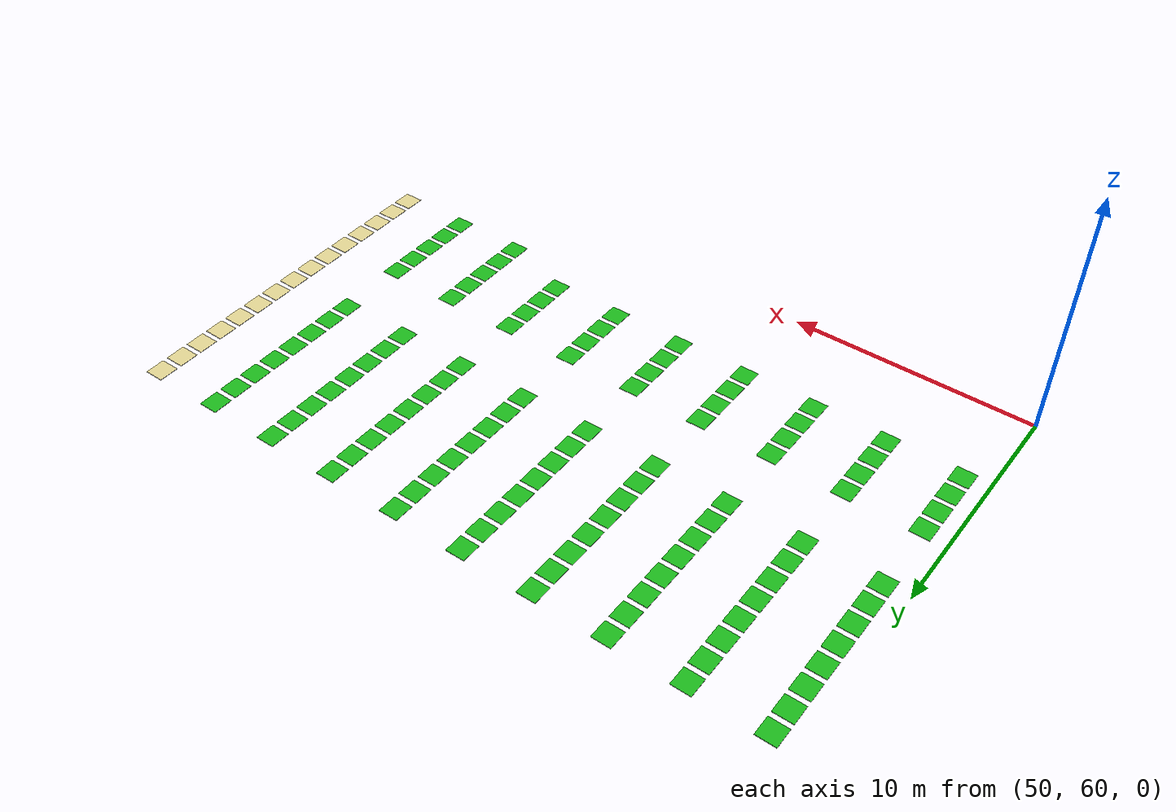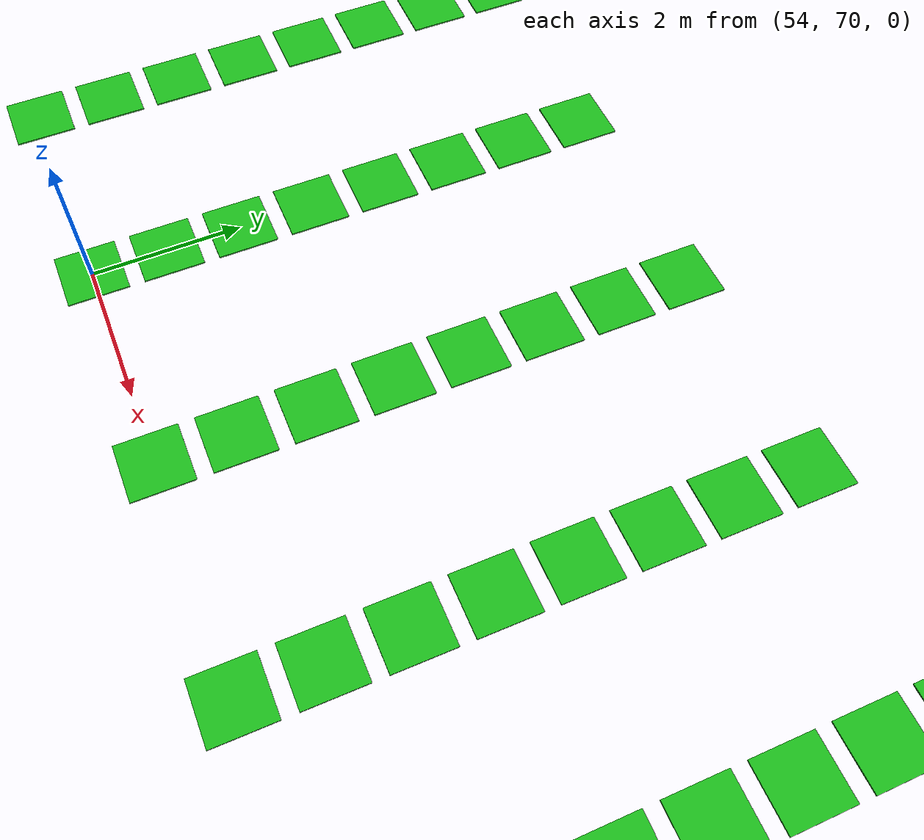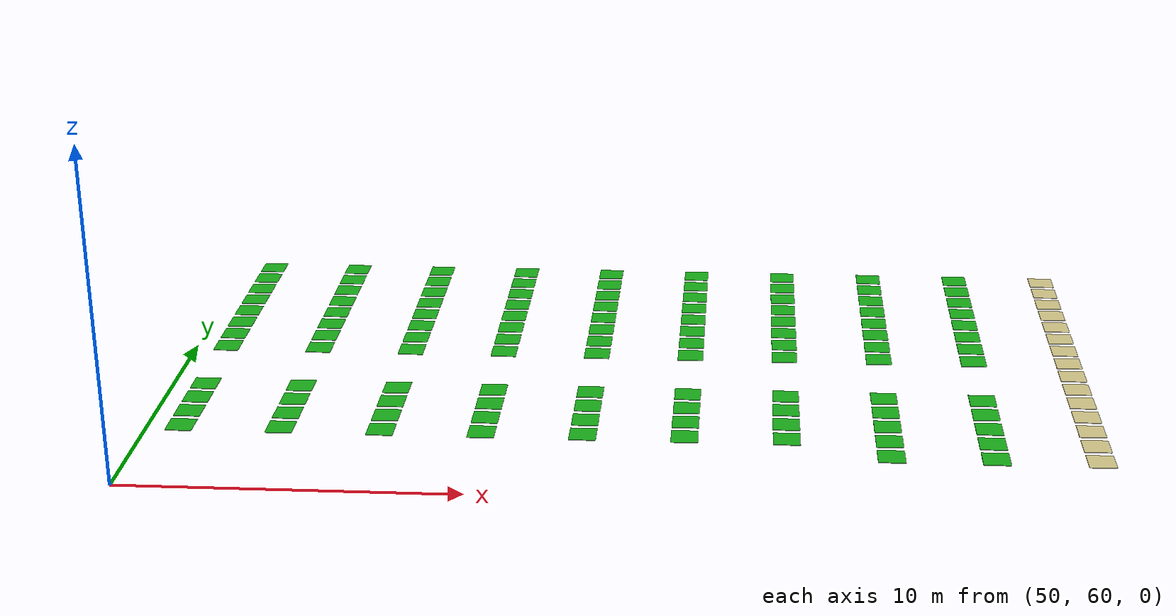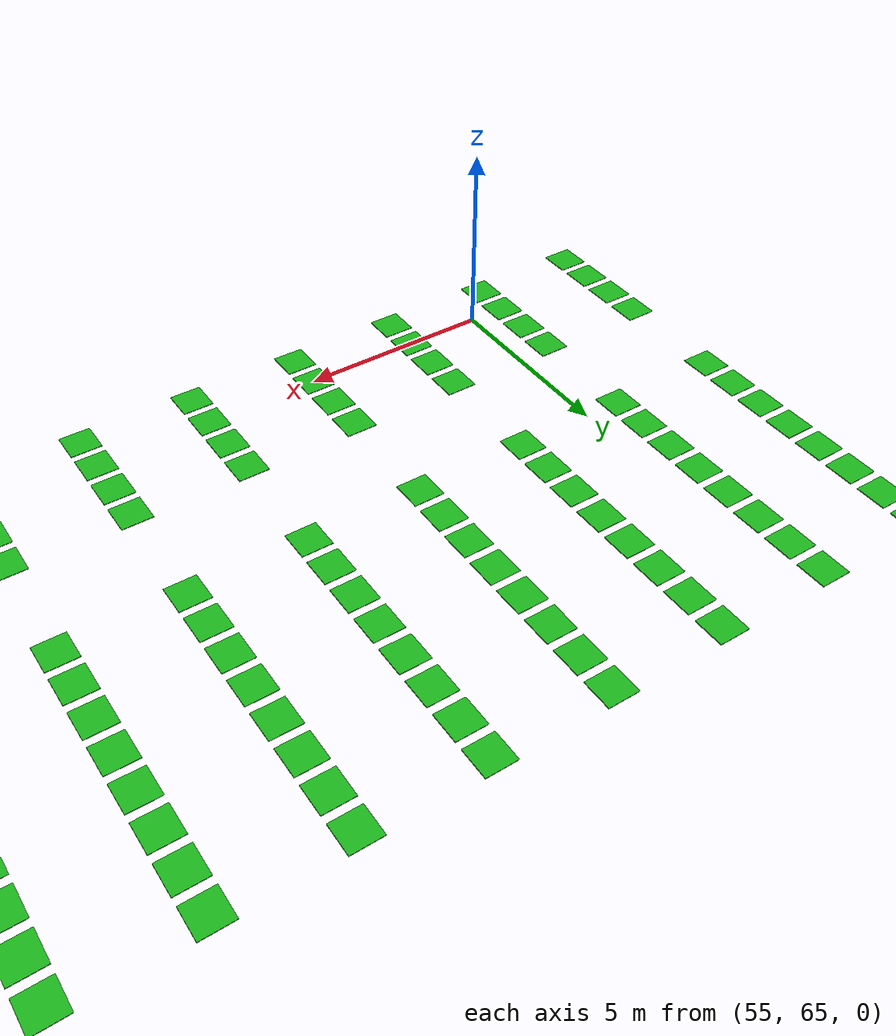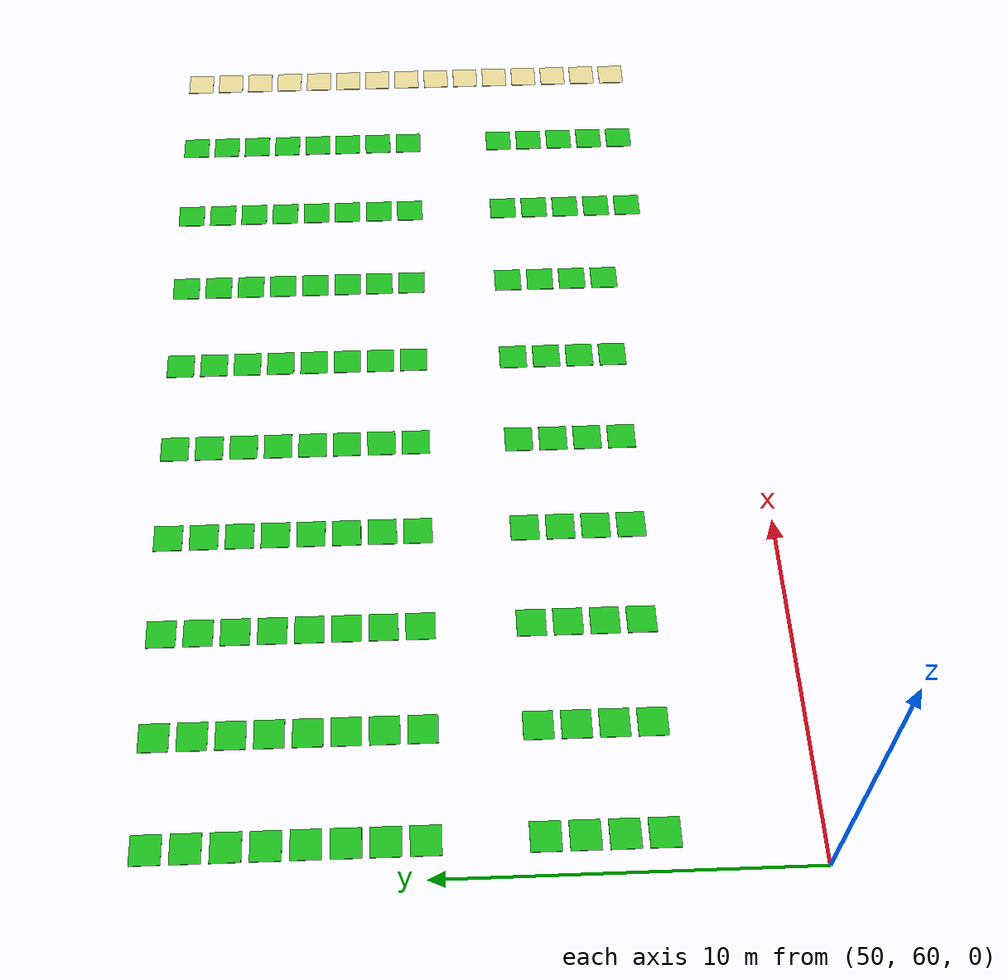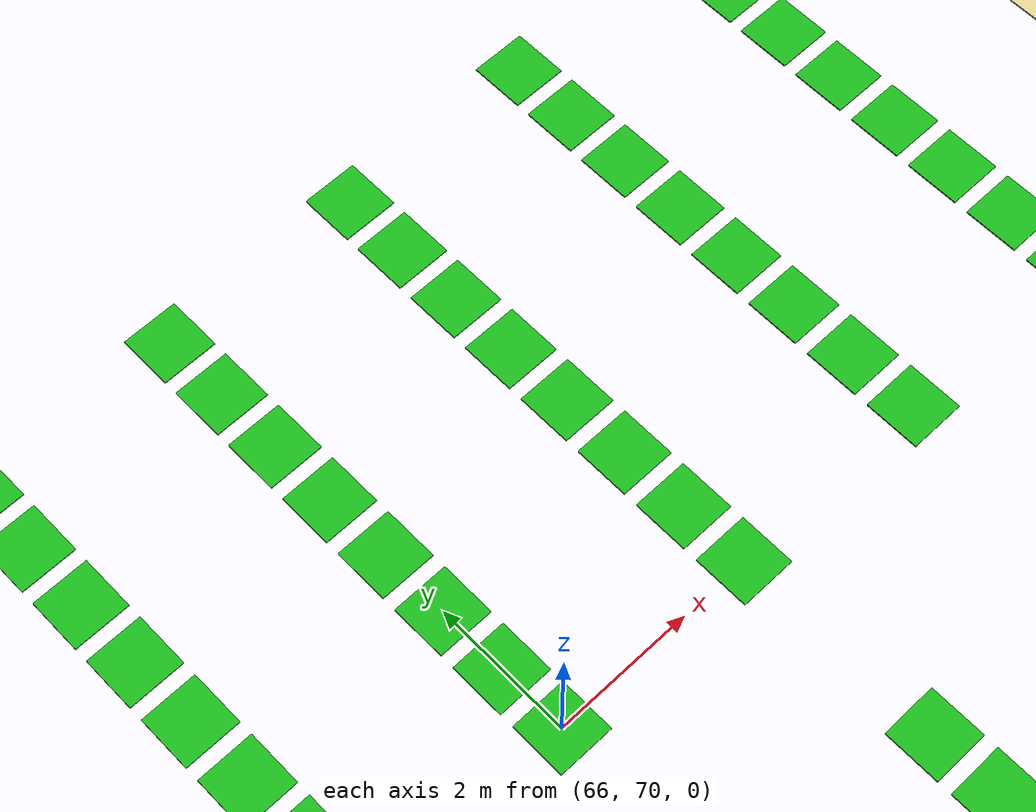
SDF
<sdf version="1.10">
 <world name="my_map">
  <model name="shelf_567">
   <static>true</static>
   <pose>51.0
        77.0
        0.02
        0 0 0</pose>
   <link name="link">
    <visual name="visual">
     <geometry><box><size>0.8
                0.8
                0.02</size></box></geometry>
     <material><ambient>0.10 0.70 0.10 1</ambient><diffuse>0.10 0.70 0.10 1</diffuse></material>
    </visual>
   </link>
  </model>
  <model name="shelf_568">
   <static>true</static>
   <pose>54.0
        77.0
        0.02
        0 0 0</pose>
   <link name="link">
    <visual name="visual">
     <geometry><box><size>0.8
                0.8
                0.02</size></box></geometry>
     <material><ambient>0.10 0.70 0.10 1</ambient><diffuse>0.10 0.70 0.10 1</diffuse></material>
    </visual>
   </link>
  </model>
  <model name="shelf_569">
   <static>true</static>
   <pose>57.0
        77.0
        0.02
        0 0 0</pose>
   <link name="link">
    <visual name="visual">
     <geometry><box><size>0.8
                0.8
                0.02</size></box></geometry>
     <material><ambient>0.10 0.70 0.10 1</ambient><diffuse>0.10 0.70 0.10 1</diffuse></material>
    </visual>
   </link>
  </model>
  <model name="shelf_570">
   <static>true</static>
   <pose>60.0
        77.0
        0.02
        0 0 0</pose>
   <link name="link">
    <visual name="visual">
     <geometry><box><size>0.8
                0.8
                0.02</size></box></geometry>
     <material><ambient>0.10 0.70 0.10 1</ambient><diffuse>0.10 0.70 0.10 1</diffuse></material>
    </visual>
   </link>
  </model>
  <model name="shelf_571">
   <static>true</static>
   <pose>63.0
        77.0
        0.02
        0 0 0</pose>
   <link name="link">
    <visual name="visual">
     <geometry><box><size>0.8
                0.8
                0.02</size></box></geometry>
     <material><ambient>0.10 0.70 0.10 1</ambient><diffuse>0.10 0.70 0.10 1</diffuse></material>
    </visual>
   </link>
  </model>
  <model name="shelf_572">
   <static>true</static>
   <pose>66.0
        77.0
        0.02
        0 0 0</pose>
   <link name="link">
    <visual name="visual">
     <geometry><box><size>0.8
                0.8
                0.02</size></box></geometry>
     <material><ambient>0.10 0.70 0.10 1</ambient><diffuse>0.10 0.70 0.10 1</diffuse></material>
    </visual>
   </link>
  </model>
  <model name="shelf_573">
   <static>true</static>
   <pose>69.0
        77.0
        0.02
        0 0 0</pose>
   <link name="link">
    <visual name="visual">
     <geometry><box><size>0.8
                0.8
                0.02</size></box></geometry>
     <material><ambient>0.10 0.70 0.10 1</ambient><diffuse>0.10 0.70 0.10 1</diffuse></material>
    </visual>
   </link>
  </model>
  <model name="shelf_574">
   <static>true</static>
   <pose>72.0
        77.0
        0.02
        0 0 0</pose>
   <link name="link">
    <visual name="visual">
     <geometry><box><size>0.8
                0.8
                0.02</size></box></geometry>
     <material><ambient>0.10 0.70 0.10 1</ambient><diffuse>0.10 0.70 0.10 1</diffuse></material>
    </visual>
   </link>
  </model>
  <model name="shelf_575">
   <static>true</static>
   <pose>75.0
        77.0
        0.02
        0 0 0</pose>
   <link name="link">
    <visual name="visual">
     <geometry><box><size>0.8
                0.8
                0.02</size></box></geometry>
     <material><ambient>0.10 0.70 0.10 1</ambient><diffuse>0.10 0.70 0.10 1</diffuse></material>
    </visual>
   </link>
  </model>
  <model name="staging_050">
   <static>true</static>
   <pose>78.0
        77.0
        0.02
        0 0 0</pose>
   <link name="link">
    <visual name="visual">
     <geometry><box><size>0.8
                0.8
                0.02</size></box></geometry>
     <material><ambient>0.85 0.80 0.55 1</ambient><diffuse>0.85 0.80 0.55 1</diffuse></material>
    </visual>
   </link>
  </model>
  <model name="shelf_592">
   <static>true</static>
   <pose>51.0
        76.0
        0.02
        0 0 0</pose>
   <link name="link">
    <visual name="visual">
     <geometry><box><size>0.8
                0.8
                0.02</size></box></geometry>
     <material><ambient>0.10 0.70 0.10 1</ambient><diffuse>0.10 0.70 0.10 1</diffuse></material>
    </visual>
   </link>
  </model>
  <model name="shelf_593">
   <static>true</static>
   <pose>54.0
        76.0
        0.02
        0 0 0</pose>
   <link name="link">
    <visual name="visual">
     <geometry><box><size>0.8
                0.8
                0.02</size></box></geometry>
     <material><ambient>0.10 0.70 0.10 1</ambient><diffuse>0.10 0.70 0.10 1</diffuse></material>
    </visual>
   </link>
  </model>
  <model name="shelf_594">
   <static>true</static>
   <pose>57.0
        76.0
        0.02
        0 0 0</pose>
   <link name="link">
    <visual name="visual">
     <geometry><box><size>0.8
                0.8
                0.02</size></box></geometry>
     <material><ambient>0.10 0.70 0.10 1</ambient><diffuse>0.10 0.70 0.10 1</diffuse></material>
    </visual>
   </link>
  </model>
  <model name="shelf_595">
   <static>true</static>
   <pose>60.0
        76.0
        0.02
        0 0 0</pose>
   <link name="link">
    <visual name="visual">
     <geometry><box><size>0.8
                0.8
                0.02</size></box></geometry>
     <material><ambient>0.10 0.70 0.10 1</ambient><diffuse>0.10 0.70 0.10 1</diffuse></material>
    </visual>
   </link>
  </model>
  <model name="shelf_596">
   <static>true</static>
   <pose>63.0
        76.0
        0.02
        0 0 0</pose>
   <link name="link">
    <visual name="visual">
     <geometry><box><size>0.8
                0.8
                0.02</size></box></geometry>
     <material><ambient>0.10 0.70 0.10 1</ambient><diffuse>0.10 0.70 0.10 1</diffuse></material>
    </visual>
   </link>
  </model>
  <model name="shelf_597">
   <static>true</static>
   <pose>66.0
        76.0
        0.02
        0 0 0</pose>
   <link name="link">
    <visual name="visual">
     <geometry><box><size>0.8
                0.8
                0.02</size></box></geometry>
     <material><ambient>0.10 0.70 0.10 1</ambient><diffuse>0.10 0.70 0.10 1</diffuse></material>
    </visual>
   </link>
  </model>
  <model name="shelf_598">
   <static>true</static>
   <pose>69.0
        76.0
        0.02
        0 0 0</pose>
   <link name="link">
    <visual name="visual">
     <geometry><box><size>0.8
                0.8
                0.02</size></box></geometry>
     <material><ambient>0.10 0.70 0.10 1</ambient><diffuse>0.10 0.70 0.10 1</diffuse></material>
    </visual>
   </link>
  </model>
  <model name="shelf_599">
   <static>true</static>
   <pose>72.0
        76.0
        0.02
        0 0 0</pose>
   <link name="link">
    <visual name="visual">
     <geometry><box><size>0.8
                0.8
                0.02</size></box></geometry>
     <material><ambient>0.10 0.70 0.10 1</ambient><diffuse>0.10 0.70 0.10 1</diffuse></material>
    </visual>
   </link>
  </model>
  <model name="shelf_600">
   <static>true</static>
   <pose>75.0
        76.0
        0.02
        0 0 0</pose>
   <link name="link">
    <visual name="visual">
     <geometry><box><size>0.8
                0.8
                0.02</size></box></geometry>
     <material><ambient>0.10 0.70 0.10 1</ambient><diffuse>0.10 0.70 0.10 1</diffuse></material>
    </visual>
   </link>
  </model>
  <model name="staging_052">
   <static>true</static>
   <pose>78.0
        76.0
        0.02
        0 0 0</pose>
   <link name="link">
    <visual name="visual">
     <geometry><box><size>0.8
                0.8
                0.02</size></box></geometry>
     <material><ambient>0.85 0.80 0.55 1</ambient><diffuse>0.85 0.80 0.55 1</diffuse></material>
    </visual>
   </link>
  </model>
  <model name="shelf_617">
   <static>true</static>
   <pose>51.0
        75.0
        0.02
        0 0 0</pose>
   <link name="link">
    <visual name="visual">
     <geometry><box><size>0.8
                0.8
                0.02</size></box></geometry>
     <material><ambient>0.10 0.70 0.10 1</ambient><diffuse>0.10 0.70 0.10 1</diffuse></material>
    </visual>
   </link>
  </model>
  <model name="shelf_618">
   <static>true</static>
   <pose>54.0
        75.0
        0.02
        0 0 0</pose>
   <link name="link">
    <visual name="visual">
     <geometry><box><size>0.8
                0.8
                0.02</size></box></geometry>
     <material><ambient>0.10 0.70 0.10 1</ambient><diffuse>0.10 0.70 0.10 1</diffuse></material>
    </visual>
   </link>
  </model>
  <model name="shelf_619">
   <static>true</static>
   <pose>57.0
        75.0
        0.02
        0 0 0</pose>
   <link name="link">
    <visual name="visual">
     <geometry><box><size>0.8
                0.8
                0.02</size></box></geometry>
     <material><ambient>0.10 0.70 0.10 1</ambient><diffuse>0.10 0.70 0.10 1</diffuse></material>
    </visual>
   </link>
  </model>
  <model name="shelf_620">
   <static>true</static>
   <pose>60.0
        75.0
        0.02
        0 0 0</pose>
   <link name="link">
    <visual name="visual">
     <geometry><box><size>0.8
                0.8
                0.02</size></box></geometry>
     <material><ambient>0.10 0.70 0.10 1</ambient><diffuse>0.10 0.70 0.10 1</diffuse></material>
    </visual>
   </link>
  </model>
  <model name="shelf_621">
   <static>true</static>
   <pose>63.0
        75.0
        0.02
        0 0 0</pose>
   <link name="link">
    <visual name="visual">
     <geometry><box><size>0.8
                0.8
                0.02</size></box></geometry>
     <material><ambient>0.10 0.70 0.10 1</ambient><diffuse>0.10 0.70 0.10 1</diffuse></material>
    </visual>
   </link>
  </model>
  <model name="shelf_622">
   <static>true</static>
   <pose>66.0
        75.0
        0.02
        0 0 0</pose>
   <link name="link">
    <visual name="visual">
     <geometry><box><size>0.8
                0.8
                0.02</size></box></geometry>
     <material><ambient>0.10 0.70 0.10 1</ambient><diffuse>0.10 0.70 0.10 1</diffuse></material>
    </visual>
   </link>
  </model>
  <model name="shelf_623">
   <static>true</static>
   <pose>69.0
        75.0
        0.02
        0 0 0</pose>
   <link name="link">
    <visual name="visual">
     <geometry><box><size>0.8
                0.8
                0.02</size></box></geometry>
     <material><ambient>0.10 0.70 0.10 1</ambient><diffuse>0.10 0.70 0.10 1</diffuse></material>
    </visual>
   </link>
  </model>
  <model name="shelf_624">
   <static>true</static>
   <pose>72.0
        75.0
        0.02
        0 0 0</pose>
   <link name="link">
    <visual name="visual">
     <geometry><box><size>0.8
                0.8
                0.02</size></box></geometry>
     <material><ambient>0.10 0.70 0.10 1</ambient><diffuse>0.10 0.70 0.10 1</diffuse></material>
    </visual>
   </link>
  </model>
  <model name="shelf_625">
   <static>true</static>
   <pose>75.0
        75.0
        0.02
        0 0 0</pose>
   <link name="link">
    <visual name="visual">
     <geometry><box><size>0.8
                0.8
                0.02</size></box></geometry>
     <material><ambient>0.10 0.70 0.10 1</ambient><diffuse>0.10 0.70 0.10 1</diffuse></material>
    </visual>
   </link>
  </model>
  <model name="staging_054">
   <static>true</static>
   <pose>78.0
        75.0
        0.02
        0 0 0</pose>
   <link name="link">
    <visual name="visual">
     <geometry><box><size>0.8
                0.8
                0.02</size></box></geometry>
     <material><ambient>0.85 0.80 0.55 1</ambient><diffuse>0.85 0.80 0.55 1</diffuse></material>
    </visual>
   </link>
  </model>
  <model name="shelf_642">
   <static>true</static>
   <pose>51.0
        74.0
        0.02
        0 0 0</pose>
   <link name="link">
    <visual name="visual">
     <geometry><box><size>0.8
                0.8
                0.02</size></box></geometry>
     <material><ambient>0.10 0.70 0.10 1</ambient><diffuse>0.10 0.70 0.10 1</diffuse></material>
    </visual>
   </link>
  </model>
  <model name="shelf_643">
   <static>true</static>
   <pose>54.0
        74.0
        0.02
        0 0 0</pose>
   <link name="link">
    <visual name="visual">
     <geometry><box><size>0.8
                0.8
                0.02</size></box></geometry>
     <material><ambient>0.10 0.70 0.10 1</ambient><diffuse>0.10 0.70 0.10 1</diffuse></material>
    </visual>
   </link>
  </model>
  <model name="shelf_644">
   <static>true</static>
   <pose>57.0
        74.0
        0.02
        0 0 0</pose>
   <link name="link">
    <visual name="visual">
     <geometry><box><size>0.8
                0.8
                0.02</size></box></geometry>
     <material><ambient>0.10 0.70 0.10 1</ambient><diffuse>0.10 0.70 0.10 1</diffuse></material>
    </visual>
   </link>
  </model>
  <model name="shelf_645">
   <static>true</static>
   <pose>60.0
        74.0
        0.02
        0 0 0</pose>
   <link name="link">
    <visual name="visual">
     <geometry><box><size>0.8
                0.8
                0.02</size></box></geometry>
     <material><ambient>0.10 0.70 0.10 1</ambient><diffuse>0.10 0.70 0.10 1</diffuse></material>
    </visual>
   </link>
  </model>
  <model name="shelf_646">
   <static>true</static>
   <pose>63.0
        74.0
        0.02
        0 0 0</pose>
   <link name="link">
    <visual name="visual">
     <geometry><box><size>0.8
                0.8
                0.02</size></box></geometry>
     <material><ambient>0.10 0.70 0.10 1</ambient><diffuse>0.10 0.70 0.10 1</diffuse></material>
    </visual>
   </link>
  </model>
  <model name="shelf_647">
   <static>true</static>
   <pose>66.0
        74.0
        0.02
        0 0 0</pose>
   <link name="link">
    <visual name="visual">
     <geometry><box><size>0.8
                0.8
                0.02</size></box></geometry>
     <material><ambient>0.10 0.70 0.10 1</ambient><diffuse>0.10 0.70 0.10 1</diffuse></material>
    </visual>
   </link>
  </model>
  <model name="shelf_648">
   <static>true</static>
   <pose>69.0
        74.0
        0.02
        0 0 0</pose>
   <link name="link">
    <visual name="visual">
     <geometry><box><size>0.8
                0.8
                0.02</size></box></geometry>
     <material><ambient>0.10 0.70 0.10 1</ambient><diffuse>0.10 0.70 0.10 1</diffuse></material>
    </visual>
   </link>
  </model>
  <model name="shelf_649">
   <static>true</static>
   <pose>72.0
        74.0
        0.02
        0 0 0</pose>
   <link name="link">
    <visual name="visual">
     <geometry><box><size>0.8
                0.8
                0.02</size></box></geometry>
     <material><ambient>0.10 0.70 0.10 1</ambient><diffuse>0.10 0.70 0.10 1</diffuse></material>
    </visual>
   </link>
  </model>
  <model name="shelf_650">
   <static>true</static>
   <pose>75.0
        74.0
        0.02
        0 0 0</pose>
   <link name="link">
    <visual name="visual">
     <geometry><box><size>0.8
                0.8
                0.02</size></box></geometry>
     <material><ambient>0.10 0.70 0.10 1</ambient><diffuse>0.10 0.70 0.10 1</diffuse></material>
    </visual>
   </link>
  </model>
  <model name="staging_056">
   <static>true</static>
   <pose>78.0
        74.0
        0.02
        0 0 0</pose>
   <link name="link">
    <visual name="visual">
     <geometry><box><size>0.8
                0.8
                0.02</size></box></geometry>
     <material><ambient>0.85 0.80 0.55 1</ambient><diffuse>0.85 0.80 0.55 1</diffuse></material>
    </visual>
   </link>
  </model>
  <model name="shelf_667">
   <static>true</static>
   <pose>51.0
        73.0
        0.02
        0 0 0</pose>
   <link name="link">
    <visual name="visual">
     <geometry><box><size>0.8
                0.8
                0.02</size></box></geometry>
     <material><ambient>0.10 0.70 0.10 1</ambient><diffuse>0.10 0.70 0.10 1</diffuse></material>
    </visual>
   </link>
  </model>
  <model name="shelf_668">
   <static>true</static>
   <pose>54.0
        73.0
        0.02
        0 0 0</pose>
   <link name="link">
    <visual name="visual">
     <geometry><box><size>0.8
                0.8
                0.02</size></box></geometry>
     <material><ambient>0.10 0.70 0.10 1</ambient><diffuse>0.10 0.70 0.10 1</diffuse></material>
    </visual>
   </link>
  </model>
  <model name="shelf_669">
   <static>true</static>
   <pose>57.0
        73.0
        0.02
        0 0 0</pose>
   <link name="link">
    <visual name="visual">
     <geometry><box><size>0.8
                0.8
                0.02</size></box></geometry>
     <material><ambient>0.10 0.70 0.10 1</ambient><diffuse>0.10 0.70 0.10 1</diffuse></material>
    </visual>
   </link>
  </model>
  <model name="shelf_670">
   <static>true</static>
   <pose>60.0
        73.0
        0.02
        0 0 0</pose>
   <link name="link">
    <visual name="visual">
     <geometry><box><size>0.8
                0.8
                0.02</size></box></geometry>
     <material><ambient>0.10 0.70 0.10 1</ambient><diffuse>0.10 0.70 0.10 1</diffuse></material>
    </visual>
   </link>
  </model>
  <model name="shelf_671">
   <static>true</static>
   <pose>63.0
        73.0
        0.02
        0 0 0</pose>
   <link name="link">
    <visual name="visual">
     <geometry><box><size>0.8
                0.8
                0.02</size></box></geometry>
     <material><ambient>0.10 0.70 0.10 1</ambient><diffuse>0.10 0.70 0.10 1</diffuse></material>
    </visual>
   </link>
  </model>
  <model name="shelf_672">
   <static>true</static>
   <pose>66.0
        73.0
        0.02
        0 0 0</pose>
   <link name="link">
    <visual name="visual">
     <geometry><box><size>0.8
                0.8
                0.02</size></box></geometry>
     <material><ambient>0.10 0.70 0.10 1</ambient><diffuse>0.10 0.70 0.10 1</diffuse></material>
    </visual>
   </link>
  </model>
  <model name="shelf_673">
   <static>true</static>
   <pose>69.0
        73.0
        0.02
        0 0 0</pose>
   <link name="link">
    <visual name="visual">
     <geometry><box><size>0.8
                0.8
                0.02</size></box></geometry>
     <material><ambient>0.10 0.70 0.10 1</ambient><diffuse>0.10 0.70 0.10 1</diffuse></material>
    </visual>
   </link>
  </model>
  <model name="shelf_674">
   <static>true</static>
   <pose>72.0
        73.0
        0.02
        0 0 0</pose>
   <link name="link">
    <visual name="visual">
     <geometry><box><size>0.8
                0.8
                0.02</size></box></geometry>
     <material><ambient>0.10 0.70 0.10 1</ambient><diffuse>0.10 0.70 0.10 1</diffuse></material>
    </visual>
   </link>
  </model>
  <model name="shelf_675">
   <static>true</static>
   <pose>75.0
        73.0
        0.02
        0 0 0</pose>
   <link name="link">
    <visual name="visual">
     <geometry><box><size>0.8
                0.8
                0.02</size></box></geometry>
     <material><ambient>0.10 0.70 0.10 1</ambient><diffuse>0.10 0.70 0.10 1</diffuse></material>
    </visual>
   </link>
  </model>
  <model name="staging_058">
   <static>true</static>
   <pose>78.0
        73.0
        0.02
        0 0 0</pose>
   <link name="link">
    <visual name="visual">
     <geometry><box><size>0.8
                0.8
                0.02</size></box></geometry>
     <material><ambient>0.85 0.80 0.55 1</ambient><diffuse>0.85 0.80 0.55 1</diffuse></material>
    </visual>
   </link>
  </model>
  <model name="shelf_692">
   <static>true</static>
   <pose>51.0
        72.0
        0.02
        0 0 0</pose>
   <link name="link">
    <visual name="visual">
     <geometry><box><size>0.8
                0.8
                0.02</size></box></geometry>
     <material><ambient>0.10 0.70 0.10 1</ambient><diffuse>0.10 0.70 0.10 1</diffuse></material>
    </visual>
   </link>
  </model>
  <model name="shelf_693">
   <static>true</static>
   <pose>54.0
        72.0
        0.02
        0 0 0</pose>
   <link name="link">
    <visual name="visual">
     <geometry><box><size>0.8
                0.8
                0.02</size></box></geometry>
     <material><ambient>0.10 0.70 0.10 1</ambient><diffuse>0.10 0.70 0.10 1</diffuse></material>
    </visual>
   </link>
  </model>
  <model name="shelf_694">
   <static>true</static>
   <pose>57.0
        72.0
        0.02
        0 0 0</pose>
   <link name="link">
    <visual name="visual">
     <geometry><box><size>0.8
                0.8
                0.02</size></box></geometry>
     <material><ambient>0.10 0.70 0.10 1</ambient><diffuse>0.10 0.70 0.10 1</diffuse></material>
    </visual>
   </link>
  </model>
  <model name="shelf_695">
   <static>true</static>
   <pose>60.0
        72.0
        0.02
        0 0 0</pose>
   <link name="link">
    <visual name="visual">
     <geometry><box><size>0.8
                0.8
                0.02</size></box></geometry>
     <material><ambient>0.10 0.70 0.10 1</ambient><diffuse>0.10 0.70 0.10 1</diffuse></material>
    </visual>
   </link>
  </model>
  <model name="shelf_696">
   <static>true</static>
   <pose>63.0
        72.0
        0.02
        0 0 0</pose>
   <link name="link">
    <visual name="visual">
     <geometry><box><size>0.8
                0.8
                0.02</size></box></geometry>
     <material><ambient>0.10 0.70 0.10 1</ambient><diffuse>0.10 0.70 0.10 1</diffuse></material>
    </visual>
   </link>
  </model>
  <model name="shelf_697">
   <static>true</static>
   <pose>66.0
        72.0
        0.02
        0 0 0</pose>
   <link name="link">
    <visual name="visual">
     <geometry><box><size>0.8
                0.8
                0.02</size></box></geometry>
     <material><ambient>0.10 0.70 0.10 1</ambient><diffuse>0.10 0.70 0.10 1</diffuse></material>
    </visual>
   </link>
  </model>
  <model name="shelf_698">
   <static>true</static>
   <pose>69.0
        72.0
        0.02
        0 0 0</pose>
   <link name="link">
    <visual name="visual">
     <geometry><box><size>0.8
                0.8
                0.02</size></box></geometry>
     <material><ambient>0.10 0.70 0.10 1</ambient><diffuse>0.10 0.70 0.10 1</diffuse></material>
    </visual>
   </link>
  </model>
  <model name="shelf_699">
   <static>true</static>
   <pose>72.0
        72.0
        0.02
        0 0 0</pose>
   <link name="link">
    <visual name="visual">
     <geometry><box><size>0.8
                0.8
                0.02</size></box></geometry>
     <material><ambient>0.10 0.70 0.10 1</ambient><diffuse>0.10 0.70 0.10 1</diffuse></material>
    </visual>
   </link>
  </model>
  <model name="shelf_700">
   <static>true</static>
   <pose>75.0
        72.0
        0.02
        0 0 0</pose>
   <link name="link">
    <visual name="visual">
     <geometry><box><size>0.8
                0.8
                0.02</size></box></geometry>
     <material><ambient>0.10 0.70 0.10 1</ambient><diffuse>0.10 0.70 0.10 1</diffuse></material>
    </visual>
   </link>
  </model>
  <model name="staging_060">
   <static>true</static>
   <pose>78.0
        72.0
        0.02
        0 0 0</pose>
   <link name="link">
    <visual name="visual">
     <geometry><box><size>0.8
                0.8
                0.02</size></box></geometry>
     <material><ambient>0.85 0.80 0.55 1</ambient><diffuse>0.85 0.80 0.55 1</diffuse></material>
    </visual>
   </link>
  </model>
  <model name="shelf_717">
   <static>true</static>
   <pose>51.0
        71.0
        0.02
        0 0 0</pose>
   <link name="link">
    <visual name="visual">
     <geometry><box><size>0.8
                0.8
                0.02</size></box></geometry>
     <material><ambient>0.10 0.70 0.10 1</ambient><diffuse>0.10 0.70 0.10 1</diffuse></material>
    </visual>
   </link>
  </model>
  <model name="shelf_718">
   <static>true</static>
   <pose>54.0
        71.0
        0.02
        0 0 0</pose>
   <link name="link">
    <visual name="visual">
     <geometry><box><size>0.8
                0.8
                0.02</size></box></geometry>
     <material><ambient>0.10 0.70 0.10 1</ambient><diffuse>0.10 0.70 0.10 1</diffuse></material>
    </visual>
   </link>
  </model>
  <model name="shelf_719">
   <static>true</static>
   <pose>57.0
        71.0
        0.02
        0 0 0</pose>
   <link name="link">
    <visual name="visual">
     <geometry><box><size>0.8
                0.8
                0.02</size></box></geometry>
     <material><ambient>0.10 0.70 0.10 1</ambient><diffuse>0.10 0.70 0.10 1</diffuse></material>
    </visual>
   </link>
  </model>
  <model name="shelf_720">
   <static>true</static>
   <pose>60.0
        71.0
        0.02
        0 0 0</pose>
   <link name="link">
    <visual name="visual">
     <geometry><box><size>0.8
                0.8
                0.02</size></box></geometry>
     <material><ambient>0.10 0.70 0.10 1</ambient><diffuse>0.10 0.70 0.10 1</diffuse></material>
    </visual>
   </link>
  </model>
  <model name="shelf_721">
   <static>true</static>
   <pose>63.0
        71.0
        0.02
        0 0 0</pose>
   <link name="link">
    <visual name="visual">
     <geometry><box><size>0.8
                0.8
                0.02</size></box></geometry>
     <material><ambient>0.10 0.70 0.10 1</ambient><diffuse>0.10 0.70 0.10 1</diffuse></material>
    </visual>
   </link>
  </model>
  <model name="shelf_722">
   <static>true</static>
   <pose>66.0
        71.0
        0.02
        0 0 0</pose>
   <link name="link">
    <visual name="visual">
     <geometry><box><size>0.8
                0.8
                0.02</size></box></geometry>
     <material><ambient>0.10 0.70 0.10 1</ambient><diffuse>0.10 0.70 0.10 1</diffuse></material>
    </visual>
   </link>
  </model>
  <model name="shelf_723">
   <static>true</static>
   <pose>69.0
        71.0
        0.02
        0 0 0</pose>
   <link name="link">
    <visual name="visual">
     <geometry><box><size>0.8
                0.8
                0.02</size></box></geometry>
     <material><ambient>0.10 0.70 0.10 1</ambient><diffuse>0.10 0.70 0.10 1</diffuse></material>
    </visual>
   </link>
  </model>
  <model name="shelf_724">
   <static>true</static>
   <pose>72.0
        71.0
        0.02
        0 0 0</pose>
   <link name="link">
    <visual name="visual">
     <geometry><box><size>0.8
                0.8
                0.02</size></box></geometry>
     <material><ambient>0.10 0.70 0.10 1</ambient><diffuse>0.10 0.70 0.10 1</diffuse></material>
    </visual>
   </link>
  </model>
  <model name="shelf_725">
   <static>true</static>
   <pose>75.0
        71.0
        0.02
        0 0 0</pose>
   <link name="link">
    <visual name="visual">
     <geometry><box><size>0.8
                0.8
                0.02</size></box></geometry>
     <material><ambient>0.10 0.70 0.10 1</ambient><diffuse>0.10 0.70 0.10 1</diffuse></material>
    </visual>
   </link>
  </model>
  <model name="staging_062">
   <static>true</static>
   <pose>78.0
        71.0
        0.02
        0 0 0</pose>
   <link name="link">
    <visual name="visual">
     <geometry><box><size>0.8
                0.8
                0.02</size></box></geometry>
     <material><ambient>0.85 0.80 0.55 1</ambient><diffuse>0.85 0.80 0.55 1</diffuse></material>
    </visual>
   </link>
  </model>
  <model name="shelf_742">
   <static>true</static>
   <pose>51.0
        70.0
        0.02
        0 0 0</pose>
   <link name="link">
    <visual name="visual">
     <geometry><box><size>0.8
                0.8
                0.02</size></box></geometry>
     <material><ambient>0.10 0.70 0.10 1</ambient><diffuse>0.10 0.70 0.10 1</diffuse></material>
    </visual>
   </link>
  </model>
  <model name="shelf_743">
   <static>true</static>
   <pose>54.0
        70.0
        0.02
        0 0 0</pose>
   <link name="link">
    <visual name="visual">
     <geometry><box><size>0.8
                0.8
                0.02</size></box></geometry>
     <material><ambient>0.10 0.70 0.10 1</ambient><diffuse>0.10 0.70 0.10 1</diffuse></material>
    </visual>
   </link>
  </model>
  <model name="shelf_744">
   <static>true</static>
   <pose>57.0
        70.0
        0.02
        0 0 0</pose>
   <link name="link">
    <visual name="visual">
     <geometry><box><size>0.8
                0.8
                0.02</size></box></geometry>
     <material><ambient>0.10 0.70 0.10 1</ambient><diffuse>0.10 0.70 0.10 1</diffuse></material>
    </visual>
   </link>
  </model>
  <model name="shelf_745">
   <static>true</static>
   <pose>60.0
        70.0
        0.02
        0 0 0</pose>
   <link name="link">
    <visual name="visual">
     <geometry><box><size>0.8
                0.8
                0.02</size></box></geometry>
     <material><ambient>0.10 0.70 0.10 1</ambient><diffuse>0.10 0.70 0.10 1</diffuse></material>
    </visual>
   </link>
  </model>
  <model name="shelf_746">
   <static>true</static>
   <pose>63.0
        70.0
        0.02
        0 0 0</pose>
   <link name="link">
    <visual name="visual">
     <geometry><box><size>0.8
                0.8
                0.02</size></box></geometry>
     <material><ambient>0.10 0.70 0.10 1</ambient><diffuse>0.10 0.70 0.10 1</diffuse></material>
    </visual>
   </link>
  </model>
  <model name="shelf_747">
   <static>true</static>
   <pose>66.0
        70.0
        0.02
        0 0 0</pose>
   <link name="link">
    <visual name="visual">
     <geometry><box><size>0.8
                0.8
                0.02</size></box></geometry>
     <material><ambient>0.10 0.70 0.10 1</ambient><diffuse>0.10 0.70 0.10 1</diffuse></material>
    </visual>
   </link>
  </model>
  <model name="shelf_748">
   <static>true</static>
   <pose>69.0
        70.0
        0.02
        0 0 0</pose>
   <link name="link">
    <visual name="visual">
     <geometry><box><size>0.8
                0.8
                0.02</size></box></geometry>
     <material><ambient>0.10 0.70 0.10 1</ambient><diffuse>0.10 0.70 0.10 1</diffuse></material>
    </visual>
   </link>
  </model>
  <model name="shelf_749">
   <static>true</static>
   <pose>72.0
        70.0
        0.02
        0 0 0</pose>
   <link name="link">
    <visual name="visual">
     <geometry><box><size>0.8
                0.8
                0.02</size></box></geometry>
     <material><ambient>0.10 0.70 0.10 1</ambient><diffuse>0.10 0.70 0.10 1</diffuse></material>
    </visual>
   </link>
  </model>
  <model name="shelf_750">
   <static>true</static>
   <pose>75.0
        70.0
        0.02
        0 0 0</pose>
   <link name="link">
    <visual name="visual">
     <geometry><box><size>0.8
                0.8
                0.02</size></box></geometry>
     <material><ambient>0.10 0.70 0.10 1</ambient><diffuse>0.10 0.70 0.10 1</diffuse></material>
    </visual>
   </link>
  </model>
  <model name="staging_064">
   <static>true</static>
   <pose>78.0
        70.0
        0.02
        0 0 0</pose>
   <link name="link">
    <visual name="visual">
     <geometry><box><size>0.8
                0.8
                0.02</size></box></geometry>
     <material><ambient>0.85 0.80 0.55 1</ambient><diffuse>0.85 0.80 0.55 1</diffuse></material>
    </visual>
   </link>
  </model>
  <model name="staging_066">
   <static>true</static>
   <pose>78.0
        69.0
        0.02
        0 0 0</pose>
   <link name="link">
    <visual name="visual">
     <geometry><box><size>0.8
                0.8
                0.02</size></box></geometry>
     <material><ambient>0.85 0.80 0.55 1</ambient><diffuse>0.85 0.80 0.55 1</diffuse></material>
    </visual>
   </link>
  </model>
  <model name="staging_068">
   <static>true</static>
   <pose>78.0
        68.0
        0.02
        0 0 0</pose>
   <link name="link">
    <visual name="visual">
     <geometry><box><size>0.8
                0.8
                0.02</size></box></geometry>
     <material><ambient>0.85 0.80 0.55 1</ambient><diffuse>0.85 0.80 0.55 1</diffuse></material>
    </visual>
   </link>
  </model>
  <model name="shelf_767">
   <static>true</static>
   <pose>51.0
        67.0
        0.02
        0 0 0</pose>
   <link name="link">
    <visual name="visual">
     <geometry><box><size>0.8
                0.8
                0.02</size></box></geometry>
     <material><ambient>0.10 0.70 0.10 1</ambient><diffuse>0.10 0.70 0.10 1</diffuse></material>
    </visual>
   </link>
  </model>
  <model name="shelf_768">
   <static>true</static>
   <pose>54.0
        67.0
        0.02
        0 0 0</pose>
   <link name="link">
    <visual name="visual">
     <geometry><box><size>0.8
                0.8
                0.02</size></box></geometry>
     <material><ambient>0.10 0.70 0.10 1</ambient><diffuse>0.10 0.70 0.10 1</diffuse></material>
    </visual>
   </link>
  </model>
  <model name="shelf_769">
   <static>true</static>
   <pose>57.0
        67.0
        0.02
        0 0 0</pose>
   <link name="link">
    <visual name="visual">
     <geometry><box><size>0.8
                0.8
                0.02</size></box></geometry>
     <material><ambient>0.10 0.70 0.10 1</ambient><diffuse>0.10 0.70 0.10 1</diffuse></material>
    </visual>
   </link>
  </model>
  <model name="shelf_770">
   <static>true</static>
   <pose>60.0
        67.0
        0.02
        0 0 0</pose>
   <link name="link">
    <visual name="visual">
     <geometry><box><size>0.8
                0.8
                0.02</size></box></geometry>
     <material><ambient>0.10 0.70 0.10 1</ambient><diffuse>0.10 0.70 0.10 1</diffuse></material>
    </visual>
   </link>
  </model>
  <model name="shelf_771">
   <static>true</static>
   <pose>63.0
        67.0
        0.02
        0 0 0</pose>
   <link name="link">
    <visual name="visual">
     <geometry><box><size>0.8
                0.8
                0.02</size></box></geometry>
     <material><ambient>0.10 0.70 0.10 1</ambient><diffuse>0.10 0.70 0.10 1</diffuse></material>
    </visual>
   </link>
  </model>
  <model name="shelf_772">
   <static>true</static>
   <pose>66.0
        67.0
        0.02
        0 0 0</pose>
   <link name="link">
    <visual name="visual">
     <geometry><box><size>0.8
                0.8
                0.02</size></box></geometry>
     <material><ambient>0.10 0.70 0.10 1</ambient><diffuse>0.10 0.70 0.10 1</diffuse></material>
    </visual>
   </link>
  </model>
  <model name="shelf_773">
   <static>true</static>
   <pose>69.0
        67.0
        0.02
        0 0 0</pose>
   <link name="link">
    <visual name="visual">
     <geometry><box><size>0.8
                0.8
                0.02</size></box></geometry>
     <material><ambient>0.10 0.70 0.10 1</ambient><diffuse>0.10 0.70 0.10 1</diffuse></material>
    </visual>
   </link>
  </model>
  <model name="shelf_774">
   <static>true</static>
   <pose>72.0
        67.0
        0.02
        0 0 0</pose>
   <link name="link">
    <visual name="visual">
     <geometry><box><size>0.8
                0.8
                0.02</size></box></geometry>
     <material><ambient>0.10 0.70 0.10 1</ambient><diffuse>0.10 0.70 0.10 1</diffuse></material>
    </visual>
   </link>
  </model>
  <model name="shelf_775">
   <static>true</static>
   <pose>75.0
        67.0
        0.02
        0 0 0</pose>
   <link name="link">
    <visual name="visual">
     <geometry><box><size>0.8
                0.8
                0.02</size></box></geometry>
     <material><ambient>0.10 0.70 0.10 1</ambient><diffuse>0.10 0.70 0.10 1</diffuse></material>
    </visual>
   </link>
  </model>
  <model name="staging_070">
   <static>true</static>
   <pose>78.0
        67.0
        0.02
        0 0 0</pose>
   <link name="link">
    <visual name="visual">
     <geometry><box><size>0.8
                0.8
                0.02</size></box></geometry>
     <material><ambient>0.85 0.80 0.55 1</ambient><diffuse>0.85 0.80 0.55 1</diffuse></material>
    </visual>
   </link>
  </model>
  <model name="shelf_792">
   <static>true</static>
   <pose>51.0
        66.0
        0.02
        0 0 0</pose>
   <link name="link">
    <visual name="visual">
     <geometry><box><size>0.8
                0.8
                0.02</size></box></geometry>
     <material><ambient>0.10 0.70 0.10 1</ambient><diffuse>0.10 0.70 0.10 1</diffuse></material>
    </visual>
   </link>
  </model>
  <model name="shelf_793">
   <static>true</static>
   <pose>54.0
        66.0
        0.02
        0 0 0</pose>
   <link name="link">
    <visual name="visual">
     <geometry><box><size>0.8
                0.8
                0.02</size></box></geometry>
     <material><ambient>0.10 0.70 0.10 1</ambient><diffuse>0.10 0.70 0.10 1</diffuse></material>
    </visual>
   </link>
  </model>
  <model name="shelf_794">
   <static>true</static>
   <pose>57.0
        66.0
        0.02
        0 0 0</pose>
   <link name="link">
    <visual name="visual">
     <geometry><box><size>0.8
                0.8
                0.02</size></box></geometry>
     <material><ambient>0.10 0.70 0.10 1</ambient><diffuse>0.10 0.70 0.10 1</diffuse></material>
    </visual>
   </link>
  </model>
  <model name="shelf_795">
   <static>true</static>
   <pose>60.0
        66.0
        0.02
        0 0 0</pose>
   <link name="link">
    <visual name="visual">
     <geometry><box><size>0.8
                0.8
                0.02</size></box></geometry>
     <material><ambient>0.10 0.70 0.10 1</ambient><diffuse>0.10 0.70 0.10 1</diffuse></material>
    </visual>
   </link>
  </model>
  <model name="shelf_796">
   <static>true</static>
   <pose>63.0
        66.0
        0.02
        0 0 0</pose>
   <link name="link">
    <visual name="visual">
     <geometry><box><size>0.8
                0.8
                0.02</size></box></geometry>
     <material><ambient>0.10 0.70 0.10 1</ambient><diffuse>0.10 0.70 0.10 1</diffuse></material>
    </visual>
   </link>
  </model>
  <model name="shelf_797">
   <static>true</static>
   <pose>66.0
        66.0
        0.02
        0 0 0</pose>
   <link name="link">
    <visual name="visual">
     <geometry><box><size>0.8
                0.8
                0.02</size></box></geometry>
     <material><ambient>0.10 0.70 0.10 1</ambient><diffuse>0.10 0.70 0.10 1</diffuse></material>
    </visual>
   </link>
  </model>
  <model name="shelf_798">
   <static>true</static>
   <pose>69.0
        66.0
        0.02
        0 0 0</pose>
   <link name="link">
    <visual name="visual">
     <geometry><box><size>0.8
                0.8
                0.02</size></box></geometry>
     <material><ambient>0.10 0.70 0.10 1</ambient><diffuse>0.10 0.70 0.10 1</diffuse></material>
    </visual>
   </link>
  </model>
  <model name="shelf_799">
   <static>true</static>
   <pose>72.0
        66.0
        0.02
        0 0 0</pose>
   <link name="link">
    <visual name="visual">
     <geometry><box><size>0.8
                0.8
                0.02</size></box></geometry>
     <material><ambient>0.10 0.70 0.10 1</ambient><diffuse>0.10 0.70 0.10 1</diffuse></material>
    </visual>
   </link>
  </model>
  <model name="shelf_800">
   <static>true</static>
   <pose>75.0
        66.0
        0.02
        0 0 0</pose>
   <link name="link">
    <visual name="visual">
     <geometry><box><size>0.8
                0.8
                0.02</size></box></geometry>
     <material><ambient>0.10 0.70 0.10 1</ambient><diffuse>0.10 0.70 0.10 1</diffuse></material>
    </visual>
   </link>
  </model>
  <model name="staging_072">
   <static>true</static>
   <pose>78.0
        66.0
        0.02
        0 0 0</pose>
   <link name="link">
    <visual name="visual">
     <geometry><box><size>0.8
                0.8
                0.02</size></box></geometry>
     <material><ambient>0.85 0.80 0.55 1</ambient><diffuse>0.85 0.80 0.55 1</diffuse></material>
    </visual>
   </link>
  </model>
  <model name="shelf_817">
   <static>true</static>
   <pose>51.0
        65.0
        0.02
        0 0 0</pose>
   <link name="link">
    <visual name="visual">
     <geometry><box><size>0.8
                0.8
                0.02</size></box></geometry>
     <material><ambient>0.10 0.70 0.10 1</ambient><diffuse>0.10 0.70 0.10 1</diffuse></material>
    </visual>
   </link>
  </model>
  <model name="shelf_818">
   <static>true</static>
   <pose>54.0
        65.0
        0.02
        0 0 0</pose>
   <link name="link">
    <visual name="visual">
     <geometry><box><size>0.8
                0.8
                0.02</size></box></geometry>
     <material><ambient>0.10 0.70 0.10 1</ambient><diffuse>0.10 0.70 0.10 1</diffuse></material>
    </visual>
   </link>
  </model>
  <model name="shelf_819">
   <static>true</static>
   <pose>57.0
        65.0
        0.02
        0 0 0</pose>
   <link name="link">
    <visual name="visual">
     <geometry><box><size>0.8
                0.8
                0.02</size></box></geometry>
     <material><ambient>0.10 0.70 0.10 1</ambient><diffuse>0.10 0.70 0.10 1</diffuse></material>
    </visual>
   </link>
  </model>
  <model name="shelf_820">
   <static>true</static>
   <pose>60.0
        65.0
        0.02
        0 0 0</pose>
   <link name="link">
    <visual name="visual">
     <geometry><box><size>0.8
                0.8
                0.02</size></box></geometry>
     <material><ambient>0.10 0.70 0.10 1</ambient><diffuse>0.10 0.70 0.10 1</diffuse></material>
    </visual>
   </link>
  </model>
  <model name="shelf_821">
   <static>true</static>
   <pose>63.0
        65.0
        0.02
        0 0 0</pose>
   <link name="link">
    <visual name="visual">
     <geometry><box><size>0.8
                0.8
                0.02</size></box></geometry>
     <material><ambient>0.10 0.70 0.10 1</ambient><diffuse>0.10 0.70 0.10 1</diffuse></material>
    </visual>
   </link>
  </model>
  <model name="shelf_822">
   <static>true</static>
   <pose>66.0
        65.0
        0.02
        0 0 0</pose>
   <link name="link">
    <visual name="visual">
     <geometry><box><size>0.8
                0.8
                0.02</size></box></geometry>
     <material><ambient>0.10 0.70 0.10 1</ambient><diffuse>0.10 0.70 0.10 1</diffuse></material>
    </visual>
   </link>
  </model>
  <model name="shelf_823">
   <static>true</static>
   <pose>69.0
        65.0
        0.02
        0 0 0</pose>
   <link name="link">
    <visual name="visual">
     <geometry><box><size>0.8
                0.8
                0.02</size></box></geometry>
     <material><ambient>0.10 0.70 0.10 1</ambient><diffuse>0.10 0.70 0.10 1</diffuse></material>
    </visual>
   </link>
  </model>
  <model name="shelf_824">
   <static>true</static>
   <pose>72.0
        65.0
        0.02
        0 0 0</pose>
   <link name="link">
    <visual name="visual">
     <geometry><box><size>0.8
                0.8
                0.02</size></box></geometry>
     <material><ambient>0.10 0.70 0.10 1</ambient><diffuse>0.10 0.70 0.10 1</diffuse></material>
    </visual>
   </link>
  </model>
  <model name="shelf_825">
   <static>true</static>
   <pose>75.0
        65.0
        0.02
        0 0 0</pose>
   <link name="link">
    <visual name="visual">
     <geometry><box><size>0.8
                0.8
                0.02</size></box></geometry>
     <material><ambient>0.10 0.70 0.10 1</ambient><diffuse>0.10 0.70 0.10 1</diffuse></material>
    </visual>
   </link>
  </model>
  <model name="staging_074">
   <static>true</static>
   <pose>78.0
        65.0
        0.02
        0 0 0</pose>
   <link name="link">
    <visual name="visual">
     <geometry><box><size>0.8
                0.8
                0.02</size></box></geometry>
     <material><ambient>0.85 0.80 0.55 1</ambient><diffuse>0.85 0.80 0.55 1</diffuse></material>
    </visual>
   </link>
  </model>
  <model name="shelf_842">
   <static>true</static>
   <pose>51.0
        64.0
        0.02
        0 0 0</pose>
   <link name="link">
    <visual name="visual">
     <geometry><box><size>0.8
                0.8
                0.02</size></box></geometry>
     <material><ambient>0.10 0.70 0.10 1</ambient><diffuse>0.10 0.70 0.10 1</diffuse></material>
    </visual>
   </link>
  </model>
  <model name="shelf_843">
   <static>true</static>
   <pose>54.0
        64.0
        0.02
        0 0 0</pose>
   <link name="link">
    <visual name="visual">
     <geometry><box><size>0.8
                0.8
                0.02</size></box></geometry>
     <material><ambient>0.10 0.70 0.10 1</ambient><diffuse>0.10 0.70 0.10 1</diffuse></material>
    </visual>
   </link>
  </model>
  <model name="shelf_844">
   <static>true</static>
   <pose>57.0
        64.0
        0.02
        0 0 0</pose>
   <link name="link">
    <visual name="visual">
     <geometry><box><size>0.8
                0.8
                0.02</size></box></geometry>
     <material><ambient>0.10 0.70 0.10 1</ambient><diffuse>0.10 0.70 0.10 1</diffuse></material>
    </visual>
   </link>
  </model>
  <model name="shelf_845">
   <static>true</static>
   <pose>60.0
        64.0
        0.02
        0 0 0</pose>
   <link name="link">
    <visual name="visual">
     <geometry><box><size>0.8
                0.8
                0.02</size></box></geometry>
     <material><ambient>0.10 0.70 0.10 1</ambient><diffuse>0.10 0.70 0.10 1</diffuse></material>
    </visual>
   </link>
  </model>
  <model name="shelf_846">
   <static>true</static>
   <pose>63.0
        64.0
        0.02
        0 0 0</pose>
   <link name="link">
    <visual name="visual">
     <geometry><box><size>0.8
                0.8
                0.02</size></box></geometry>
     <material><ambient>0.10 0.70 0.10 1</ambient><diffuse>0.10 0.70 0.10 1</diffuse></material>
    </visual>
   </link>
  </model>
  <model name="shelf_847">
   <static>true</static>
   <pose>66.0
        64.0
        0.02
        0 0 0</pose>
   <link name="link">
    <visual name="visual">
     <geometry><box><size>0.8
                0.8
                0.02</size></box></geometry>
     <material><ambient>0.10 0.70 0.10 1</ambient><diffuse>0.10 0.70 0.10 1</diffuse></material>
    </visual>
   </link>
  </model>
  <model name="shelf_848">
   <static>true</static>
   <pose>69.0
        64.0
        0.02
        0 0 0</pose>
   <link name="link">
    <visual name="visual">
     <geometry><box><size>0.8
                0.8
                0.02</size></box></geometry>
     <material><ambient>0.10 0.70 0.10 1</ambient><diffuse>0.10 0.70 0.10 1</diffuse></material>
    </visual>
   </link>
  </model>
  <model name="shelf_849">
   <static>true</static>
   <pose>72.0
        64.0
        0.02
        0 0 0</pose>
   <link name="link">
    <visual name="visual">
     <geometry><box><size>0.8
                0.8
                0.02</size></box></geometry>
     <material><ambient>0.10 0.70 0.10 1</ambient><diffuse>0.10 0.70 0.10 1</diffuse></material>
    </visual>
   </link>
  </model>
  <model name="shelf_850">
   <static>true</static>
   <pose>75.0
        64.0
        0.02
        0 0 0</pose>
   <link name="link">
    <visual name="visual">
     <geometry><box><size>0.8
                0.8
                0.02</size></box></geometry>
     <material><ambient>0.10 0.70 0.10 1</ambient><diffuse>0.10 0.70 0.10 1</diffuse></material>
    </visual>
   </link>
  </model>
  <model name="staging_076">
   <static>true</static>
   <pose>78.0
        64.0
        0.02
        0 0 0</pose>
   <link name="link">
    <visual name="visual">
     <geometry><box><size>0.8
                0.8
                0.02</size></box></geometry>
     <material><ambient>0.85 0.80 0.55 1</ambient><diffuse>0.85 0.80 0.55 1</diffuse></material>
    </visual>
   </link>
  </model>
  <model name="shelf_874">
   <static>true</static>
   <pose>72.0
        63.0
        0.02
        0 0 0</pose>
   <link name="link">
    <visual name="visual">
     <geometry><box><size>0.8
                0.8
                0.02</size></box></geometry>
     <material><ambient>0.10 0.70 0.10 1</ambient><diffuse>0.10 0.70 0.10 1</diffuse></material>
    </visual>
   </link>
  </model>
  <model name="shelf_875">
   <static>true</static>
   <pose>75.0
        63.0
        0.02
        0 0 0</pose>
   <link name="link">
    <visual name="visual">
     <geometry><box><size>0.8
                0.8
                0.02</size></box></geometry>
     <material><ambient>0.10 0.70 0.10 1</ambient><diffuse>0.10 0.70 0.10 1</diffuse></material>
    </visual>
   </link>
  </model>
  <model name="staging_078">
   <static>true</static>
   <pose>78.0
        63.0
        0.02
        0 0 0</pose>
   <link name="link">
    <visual name="visual">
     <geometry><box><size>0.8
                0.8
                0.02</size></box></geometry>
     <material><ambient>0.85 0.80 0.55 1</ambient><diffuse>0.85 0.80 0.55 1</diffuse></material>
    </visual>
   </link>
  </model>
 </world>
</sdf>
